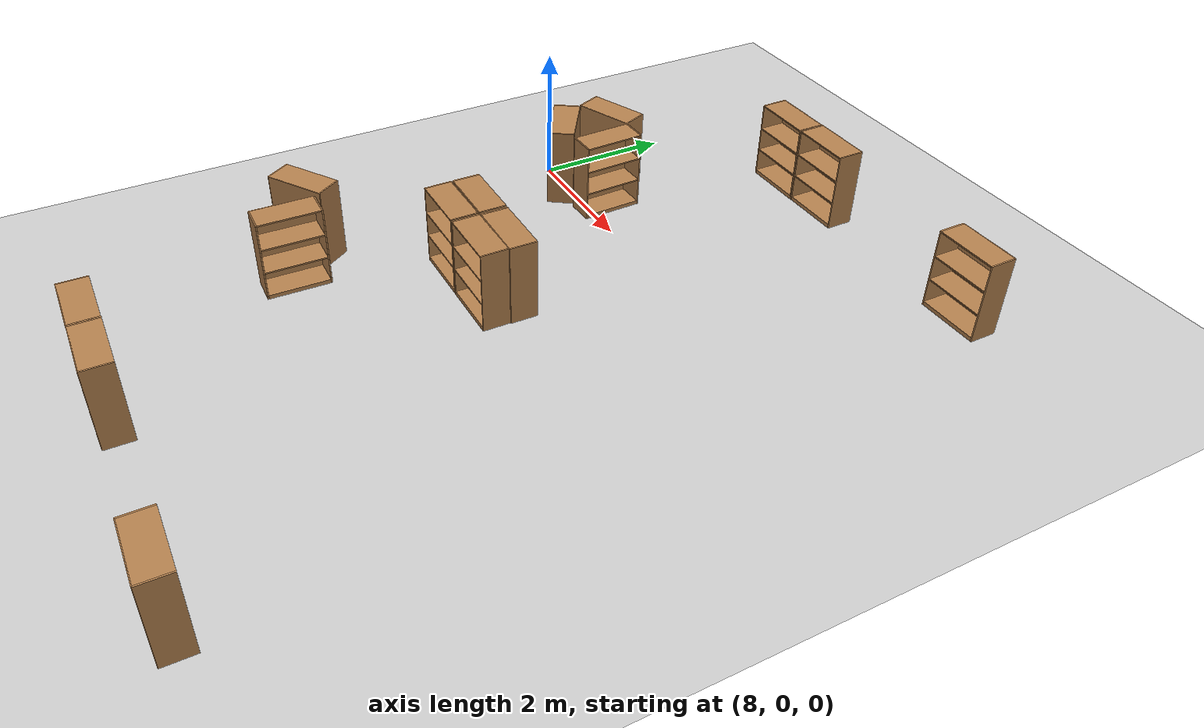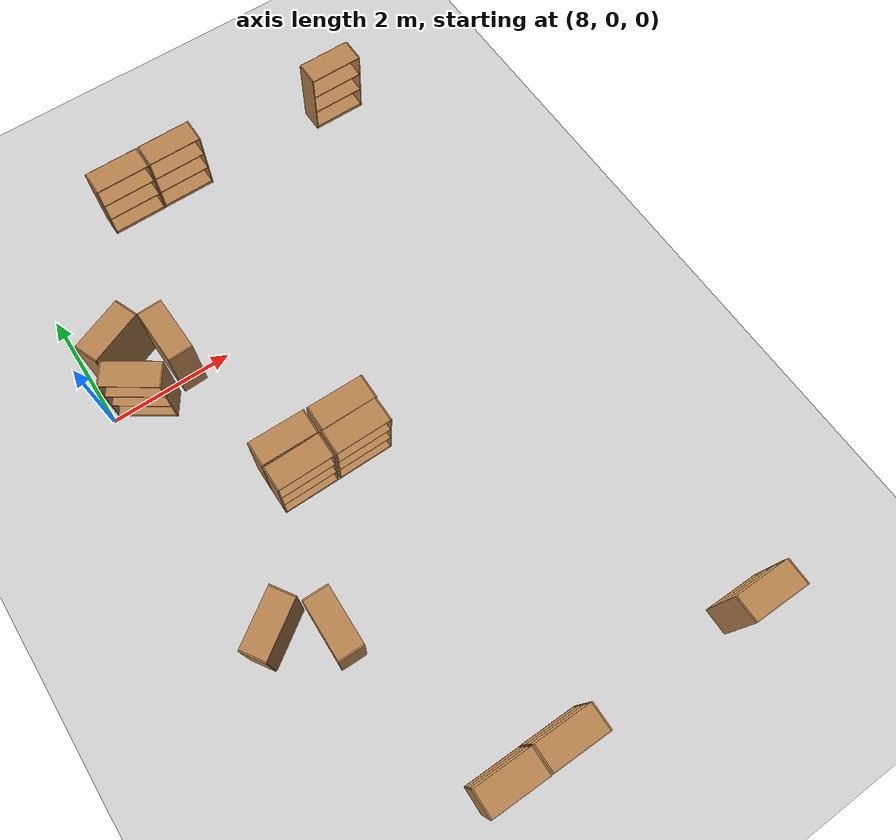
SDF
<sdf version="1.7">
 <world name="default">
  <model name="ground_plane">
   <static>1</static>
   <link name="link">
    <collision name="collision">
     <geometry><plane><normal>0 0 1</normal><size>100 100</size></plane></geometry>
     <surface><friction><ode><mu>100</mu><mu2>50</mu2></ode></friction></surface>
    </collision>
    <visual name="visual">
     <cast_shadows>0</cast_shadows>
     <geometry><plane><normal>0 0 1</normal><size>100 100</size></plane></geometry>
     <material>
      <script><uri>file://media/materials/scripts/gazebo.material</uri><name>Gazebo/Grey</name></script>
     </material>
    </visual>
   </link>
  </model>
  <model name="bookshelf_clone_clone_clone_0">
   <static>1</static>
   <link name="link">
    <inertial><mass>1</mass></inertial>
    <collision name="back">
     <pose>0 0.005 0.6 0 -0 0</pose>
     <geometry><box><size>0.9 0.01 1.2</size></box></geometry>
    </collision>
    <visual name="visual1">
     <pose>0 0.005 0.6 0 -0 0</pose>
     <geometry><box><size>0.9 0.01 1.2</size></box></geometry>
     <material>
      <script><uri>file://media/materials/scripts/gazebo.material</uri><name>Gazebo/Wood</name></script>
     </material>
    </visual>
    <collision name="left_side">
     <pose>0.45 -0.195 0.6 0 -0 0</pose>
     <geometry><box><size>0.02 0.4 1.2</size></box></geometry>
    </collision>
    <visual name="visual2">
     <pose>0.45 -0.195 0.6 0 -0 0</pose>
     <geometry><box><size>0.02 0.4 1.2</size></box></geometry>
     <material>
      <script><uri>file://media/materials/scripts/gazebo.material</uri><name>Gazebo/Wood</name></script>
     </material>
    </visual>
    <collision name="right_side">
     <pose>-0.45 -0.195 0.6 0 -0 0</pose>
     <geometry><box><size>0.02 0.4 1.2</size></box></geometry>
    </collision>
    <visual name="visual3">
     <pose>-0.45 -0.195 0.6 0 -0 0</pose>
     <geometry><box><size>0.02 0.4 1.2</size></box></geometry>
     <material>
      <script><uri>file://media/materials/scripts/gazebo.material</uri><name>Gazebo/Wood</name></script>
     </material>
    </visual>
    <collision name="bottom">
     <pose>0 -0.195 0.03 0 -0 0</pose>
     <geometry><box><size>0.88 0.4 0.06</size></box></geometry>
    </collision>
    <visual name="visual4">
     <pose>0 -0.195 0.03 0 -0 0</pose>
     <geometry><box><size>0.88 0.4 0.06</size></box></geometry>
     <material>
      <script><uri>file://media/materials/scripts/gazebo.material</uri><name>Gazebo/Wood</name></script>
     </material>
    </visual>
    <collision name="top">
     <pose>0 -0.195 1.19 0 -0 0</pose>
     <geometry><box><size>0.88 0.4 0.02</size></box></geometry>
    </collision>
    <visual name="visual5">
     <pose>0 -0.195 1.19 0 -0 0</pose>
     <geometry><box><size>0.88 0.4 0.02</size></box></geometry>
     <material>
      <script><uri>file://media/materials/scripts/gazebo.material</uri><name>Gazebo/Wood</name></script>
     </material>
    </visual>
    <collision name="low_shelf">
     <pose>0 -0.195 0.43 0 -0 0</pose>
     <geometry><box><size>0.88 0.4 0.02</size></box></geometry>
    </collision>
    <visual name="visual6">
     <pose>0 -0.195 0.43 0 -0 0</pose>
     <geometry><box><size>0.88 0.4 0.02</size></box></geometry>
     <material>
      <script><uri>file://media/materials/scripts/gazebo.material</uri><name>Gazebo/Wood</name></script>
     </material>
    </visual>
    <collision name="high_shelf">
     <pose>0 -0.195 0.8 0 -0 0</pose>
     <geometry><box><size>0.88 0.4 0.02</size></box></geometry>
    </collision>
    <visual name="visual7">
     <pose>0 -0.195 0.8 0 -0 0</pose>
     <geometry><box><size>0.88 0.4 0.02</size></box></geometry>
     <material>
      <script><uri>file://media/materials/scripts/gazebo.material</uri><name>Gazebo/Wood</name></script>
     </material>
    </visual>
   </link>
   <pose>9.92381 -7.54197 0.012624 0 -0 3.13078</pose>
  </model>
  <model name="bookshelf_clone_clone_clone_1">
   <static>1</static>
   <link name="link">
    <inertial><mass>1</mass></inertial>
    <collision name="back">
     <pose>0 0.005 0.6 0 -0 0</pose>
     <geometry><box><size>0.9 0.01 1.2</size></box></geometry>
    </collision>
    <visual name="visual1">
     <pose>0 0.005 0.6 0 -0 0</pose>
     <geometry><box><size>0.9 0.01 1.2</size></box></geometry>
     <material>
      <script><uri>file://media/materials/scripts/gazebo.material</uri><name>Gazebo/Wood</name></script>
     </material>
    </visual>
    <collision name="left_side">
     <pose>0.45 -0.195 0.6 0 -0 0</pose>
     <geometry><box><size>0.02 0.4 1.2</size></box></geometry>
    </collision>
    <visual name="visual2">
     <pose>0.45 -0.195 0.6 0 -0 0</pose>
     <geometry><box><size>0.02 0.4 1.2</size></box></geometry>
     <material>
      <script><uri>file://media/materials/scripts/gazebo.material</uri><name>Gazebo/Wood</name></script>
     </material>
    </visual>
    <collision name="right_side">
     <pose>-0.45 -0.195 0.6 0 -0 0</pose>
     <geometry><box><size>0.02 0.4 1.2</size></box></geometry>
    </collision>
    <visual name="visual3">
     <pose>-0.45 -0.195 0.6 0 -0 0</pose>
     <geometry><box><size>0.02 0.4 1.2</size></box></geometry>
     <material>
      <script><uri>file://media/materials/scripts/gazebo.material</uri><name>Gazebo/Wood</name></script>
     </material>
    </visual>
    <collision name="bottom">
     <pose>0 -0.195 0.03 0 -0 0</pose>
     <geometry><box><size>0.88 0.4 0.06</size></box></geometry>
    </collision>
    <visual name="visual4">
     <pose>0 -0.195 0.03 0 -0 0</pose>
     <geometry><box><size>0.88 0.4 0.06</size></box></geometry>
     <material>
      <script><uri>file://media/materials/scripts/gazebo.material</uri><name>Gazebo/Wood</name></script>
     </material>
    </visual>
    <collision name="top">
     <pose>0 -0.195 1.19 0 -0 0</pose>
     <geometry><box><size>0.88 0.4 0.02</size></box></geometry>
    </collision>
    <visual name="visual5">
     <pose>0 -0.195 1.19 0 -0 0</pose>
     <geometry><box><size>0.88 0.4 0.02</size></box></geometry>
     <material>
      <script><uri>file://media/materials/scripts/gazebo.material</uri><name>Gazebo/Wood</name></script>
     </material>
    </visual>
    <collision name="low_shelf">
     <pose>0 -0.195 0.43 0 -0 0</pose>
     <geometry><box><size>0.88 0.4 0.02</size></box></geometry>
    </collision>
    <visual name="visual6">
     <pose>0 -0.195 0.43 0 -0 0</pose>
     <geometry><box><size>0.88 0.4 0.02</size></box></geometry>
     <material>
      <script><uri>file://media/materials/scripts/gazebo.material</uri><name>Gazebo/Wood</name></script>
     </material>
    </visual>
    <collision name="high_shelf">
     <pose>0 -0.195 0.8 0 -0 0</pose>
     <geometry><box><size>0.88 0.4 0.02</size></box></geometry>
    </collision>
    <visual name="visual7">
     <pose>0 -0.195 0.8 0 -0 0</pose>
     <geometry><box><size>0.88 0.4 0.02</size></box></geometry>
     <material>
      <script><uri>file://media/materials/scripts/gazebo.material</uri><name>Gazebo/Wood</name></script>
     </material>
    </visual>
   </link>
   <pose>10.8453 -7.5483 0.012624 0 -0 3.13078</pose>
  </model>
  <model name="bookshelf_clone_clone_clone_2">
   <static>1</static>
   <link name="link">
    <inertial><mass>1</mass></inertial>
    <collision name="back">
     <pose>0 0.005 0.6 0 -0 0</pose>
     <geometry><box><size>0.9 0.01 1.2</size></box></geometry>
    </collision>
    <visual name="visual1">
     <pose>0 0.005 0.6 0 -0 0</pose>
     <geometry><box><size>0.9 0.01 1.2</size></box></geometry>
     <material>
      <script><uri>file://media/materials/scripts/gazebo.material</uri><name>Gazebo/Wood</name></script>
     </material>
    </visual>
    <collision name="left_side">
     <pose>0.45 -0.195 0.6 0 -0 0</pose>
     <geometry><box><size>0.02 0.4 1.2</size></box></geometry>
    </collision>
    <visual name="visual2">
     <pose>0.45 -0.195 0.6 0 -0 0</pose>
     <geometry><box><size>0.02 0.4 1.2</size></box></geometry>
     <material>
      <script><uri>file://media/materials/scripts/gazebo.material</uri><name>Gazebo/Wood</name></script>
     </material>
    </visual>
    <collision name="right_side">
     <pose>-0.45 -0.195 0.6 0 -0 0</pose>
     <geometry><box><size>0.02 0.4 1.2</size></box></geometry>
    </collision>
    <visual name="visual3">
     <pose>-0.45 -0.195 0.6 0 -0 0</pose>
     <geometry><box><size>0.02 0.4 1.2</size></box></geometry>
     <material>
      <script><uri>file://media/materials/scripts/gazebo.material</uri><name>Gazebo/Wood</name></script>
     </material>
    </visual>
    <collision name="bottom">
     <pose>0 -0.195 0.03 0 -0 0</pose>
     <geometry><box><size>0.88 0.4 0.06</size></box></geometry>
    </collision>
    <visual name="visual4">
     <pose>0 -0.195 0.03 0 -0 0</pose>
     <geometry><box><size>0.88 0.4 0.06</size></box></geometry>
     <material>
      <script><uri>file://media/materials/scripts/gazebo.material</uri><name>Gazebo/Wood</name></script>
     </material>
    </visual>
    <collision name="top">
     <pose>0 -0.195 1.19 0 -0 0</pose>
     <geometry><box><size>0.88 0.4 0.02</size></box></geometry>
    </collision>
    <visual name="visual5">
     <pose>0 -0.195 1.19 0 -0 0</pose>
     <geometry><box><size>0.88 0.4 0.02</size></box></geometry>
     <material>
      <script><uri>file://media/materials/scripts/gazebo.material</uri><name>Gazebo/Wood</name></script>
     </material>
    </visual>
    <collision name="low_shelf">
     <pose>0 -0.195 0.43 0 -0 0</pose>
     <geometry><box><size>0.88 0.4 0.02</size></box></geometry>
    </collision>
    <visual name="visual6">
     <pose>0 -0.195 0.43 0 -0 0</pose>
     <geometry><box><size>0.88 0.4 0.02</size></box></geometry>
     <material>
      <script><uri>file://media/materials/scripts/gazebo.material</uri><name>Gazebo/Wood</name></script>
     </material>
    </visual>
    <collision name="high_shelf">
     <pose>0 -0.195 0.8 0 -0 0</pose>
     <geometry><box><size>0.88 0.4 0.02</size></box></geometry>
    </collision>
    <visual name="visual7">
     <pose>0 -0.195 0.8 0 -0 0</pose>
     <geometry><box><size>0.88 0.4 0.02</size></box></geometry>
     <material>
      <script><uri>file://media/materials/scripts/gazebo.material</uri><name>Gazebo/Wood</name></script>
     </material>
    </visual>
   </link>
   <pose>14.1071 -7.58237 0.012624 0 -0 3.13078</pose>
  </model>
  <model name="bookshelf_clone_0">
   <static>1</static>
   <link name="link">
    <inertial><mass>1</mass></inertial>
    <collision name="back">
     <pose>0 0.005 0.6 0 -0 0</pose>
     <geometry><box><size>0.9 0.01 1.2</size></box></geometry>
    </collision>
    <visual name="visual1">
     <pose>0 0.005 0.6 0 -0 0</pose>
     <geometry><box><size>0.9 0.01 1.2</size></box></geometry>
     <material>
      <script><uri>file://media/materials/scripts/gazebo.material</uri><name>Gazebo/Wood</name></script>
     </material>
    </visual>
    <collision name="left_side">
     <pose>0.45 -0.195 0.6 0 -0 0</pose>
     <geometry><box><size>0.02 0.4 1.2</size></box></geometry>
    </collision>
    <visual name="visual2">
     <pose>0.45 -0.195 0.6 0 -0 0</pose>
     <geometry><box><size>0.02 0.4 1.2</size></box></geometry>
     <material>
      <script><uri>file://media/materials/scripts/gazebo.material</uri><name>Gazebo/Wood</name></script>
     </material>
    </visual>
    <collision name="right_side">
     <pose>-0.45 -0.195 0.6 0 -0 0</pose>
     <geometry><box><size>0.02 0.4 1.2</size></box></geometry>
    </collision>
    <visual name="visual3">
     <pose>-0.45 -0.195 0.6 0 -0 0</pose>
     <geometry><box><size>0.02 0.4 1.2</size></box></geometry>
     <material>
      <script><uri>file://media/materials/scripts/gazebo.material</uri><name>Gazebo/Wood</name></script>
     </material>
    </visual>
    <collision name="bottom">
     <pose>0 -0.195 0.03 0 -0 0</pose>
     <geometry><box><size>0.88 0.4 0.06</size></box></geometry>
    </collision>
    <visual name="visual4">
     <pose>0 -0.195 0.03 0 -0 0</pose>
     <geometry><box><size>0.88 0.4 0.06</size></box></geometry>
     <material>
      <script><uri>file://media/materials/scripts/gazebo.material</uri><name>Gazebo/Wood</name></script>
     </material>
    </visual>
    <collision name="top">
     <pose>0 -0.195 1.19 0 -0 0</pose>
     <geometry><box><size>0.88 0.4 0.02</size></box></geometry>
    </collision>
    <visual name="visual5">
     <pose>0 -0.195 1.19 0 -0 0</pose>
     <geometry><box><size>0.88 0.4 0.02</size></box></geometry>
     <material>
      <script><uri>file://media/materials/scripts/gazebo.material</uri><name>Gazebo/Wood</name></script>
     </material>
    </visual>
    <collision name="low_shelf">
     <pose>0 -0.195 0.43 0 -0 0</pose>
     <geometry><box><size>0.88 0.4 0.02</size></box></geometry>
    </collision>
    <visual name="visual6">
     <pose>0 -0.195 0.43 0 -0 0</pose>
     <geometry><box><size>0.88 0.4 0.02</size></box></geometry>
     <material>
      <script><uri>file://media/materials/scripts/gazebo.material</uri><name>Gazebo/Wood</name></script>
     </material>
    </visual>
    <collision name="high_shelf">
     <pose>0 -0.195 0.8 0 -0 0</pose>
     <geometry><box><size>0.88 0.4 0.02</size></box></geometry>
    </collision>
    <visual name="visual7">
     <pose>0 -0.195 0.8 0 -0 0</pose>
     <geometry><box><size>0.88 0.4 0.02</size></box></geometry>
     <material>
      <script><uri>file://media/materials/scripts/gazebo.material</uri><name>Gazebo/Wood</name></script>
     </material>
    </visual>
   </link>
   <pose>10.0302 3.32854 0.012624 0 -0 0</pose>
  </model>
  <model name="bookshelf_clone_0_clone">
   <static>1</static>
   <link name="link">
    <inertial><mass>1</mass></inertial>
    <collision name="back">
     <pose>0 0.005 0.6 0 -0 0</pose>
     <geometry><box><size>0.9 0.01 1.2</size></box></geometry>
    </collision>
    <visual name="visual1">
     <pose>0 0.005 0.6 0 -0 0</pose>
     <geometry><box><size>0.9 0.01 1.2</size></box></geometry>
     <material>
      <script><uri>file://media/materials/scripts/gazebo.material</uri><name>Gazebo/Wood</name></script>
     </material>
    </visual>
    <collision name="left_side">
     <pose>0.45 -0.195 0.6 0 -0 0</pose>
     <geometry><box><size>0.02 0.4 1.2</size></box></geometry>
    </collision>
    <visual name="visual2">
     <pose>0.45 -0.195 0.6 0 -0 0</pose>
     <geometry><box><size>0.02 0.4 1.2</size></box></geometry>
     <material>
      <script><uri>file://media/materials/scripts/gazebo.material</uri><name>Gazebo/Wood</name></script>
     </material>
    </visual>
    <collision name="right_side">
     <pose>-0.45 -0.195 0.6 0 -0 0</pose>
     <geometry><box><size>0.02 0.4 1.2</size></box></geometry>
    </collision>
    <visual name="visual3">
     <pose>-0.45 -0.195 0.6 0 -0 0</pose>
     <geometry><box><size>0.02 0.4 1.2</size></box></geometry>
     <material>
      <script><uri>file://media/materials/scripts/gazebo.material</uri><name>Gazebo/Wood</name></script>
     </material>
    </visual>
    <collision name="bottom">
     <pose>0 -0.195 0.03 0 -0 0</pose>
     <geometry><box><size>0.88 0.4 0.06</size></box></geometry>
    </collision>
    <visual name="visual4">
     <pose>0 -0.195 0.03 0 -0 0</pose>
     <geometry><box><size>0.88 0.4 0.06</size></box></geometry>
     <material>
      <script><uri>file://media/materials/scripts/gazebo.material</uri><name>Gazebo/Wood</name></script>
     </material>
    </visual>
    <collision name="top">
     <pose>0 -0.195 1.19 0 -0 0</pose>
     <geometry><box><size>0.88 0.4 0.02</size></box></geometry>
    </collision>
    <visual name="visual5">
     <pose>0 -0.195 1.19 0 -0 0</pose>
     <geometry><box><size>0.88 0.4 0.02</size></box></geometry>
     <material>
      <script><uri>file://media/materials/scripts/gazebo.material</uri><name>Gazebo/Wood</name></script>
     </material>
    </visual>
    <collision name="low_shelf">
     <pose>0 -0.195 0.43 0 -0 0</pose>
     <geometry><box><size>0.88 0.4 0.02</size></box></geometry>
    </collision>
    <visual name="visual6">
     <pose>0 -0.195 0.43 0 -0 0</pose>
     <geometry><box><size>0.88 0.4 0.02</size></box></geometry>
     <material>
      <script><uri>file://media/materials/scripts/gazebo.material</uri><name>Gazebo/Wood</name></script>
     </material>
    </visual>
    <collision name="high_shelf">
     <pose>0 -0.195 0.8 0 -0 0</pose>
     <geometry><box><size>0.88 0.4 0.02</size></box></geometry>
    </collision>
    <visual name="visual7">
     <pose>0 -0.195 0.8 0 -0 0</pose>
     <geometry><box><size>0.88 0.4 0.02</size></box></geometry>
     <material>
      <script><uri>file://media/materials/scripts/gazebo.material</uri><name>Gazebo/Wood</name></script>
     </material>
    </visual>
   </link>
   <pose>10.9525 3.33337 0.012624 0 -0 0</pose>
  </model>
  <model name="bookshelf_clone_0_clone_0">
   <static>1</static>
   <link name="link">
    <inertial><mass>1</mass></inertial>
    <collision name="back">
     <pose>0 0.005 0.6 0 -0 0</pose>
     <geometry><box><size>0.9 0.01 1.2</size></box></geometry>
    </collision>
    <visual name="visual1">
     <pose>0 0.005 0.6 0 -0 0</pose>
     <geometry><box><size>0.9 0.01 1.2</size></box></geometry>
     <material>
      <script><uri>file://media/materials/scripts/gazebo.material</uri><name>Gazebo/Wood</name></script>
     </material>
    </visual>
    <collision name="left_side">
     <pose>0.45 -0.195 0.6 0 -0 0</pose>
     <geometry><box><size>0.02 0.4 1.2</size></box></geometry>
    </collision>
    <visual name="visual2">
     <pose>0.45 -0.195 0.6 0 -0 0</pose>
     <geometry><box><size>0.02 0.4 1.2</size></box></geometry>
     <material>
      <script><uri>file://media/materials/scripts/gazebo.material</uri><name>Gazebo/Wood</name></script>
     </material>
    </visual>
    <collision name="right_side">
     <pose>-0.45 -0.195 0.6 0 -0 0</pose>
     <geometry><box><size>0.02 0.4 1.2</size></box></geometry>
    </collision>
    <visual name="visual3">
     <pose>-0.45 -0.195 0.6 0 -0 0</pose>
     <geometry><box><size>0.02 0.4 1.2</size></box></geometry>
     <material>
      <script><uri>file://media/materials/scripts/gazebo.material</uri><name>Gazebo/Wood</name></script>
     </material>
    </visual>
    <collision name="bottom">
     <pose>0 -0.195 0.03 0 -0 0</pose>
     <geometry><box><size>0.88 0.4 0.06</size></box></geometry>
    </collision>
    <visual name="visual4">
     <pose>0 -0.195 0.03 0 -0 0</pose>
     <geometry><box><size>0.88 0.4 0.06</size></box></geometry>
     <material>
      <script><uri>file://media/materials/scripts/gazebo.material</uri><name>Gazebo/Wood</name></script>
     </material>
    </visual>
    <collision name="top">
     <pose>0 -0.195 1.19 0 -0 0</pose>
     <geometry><box><size>0.88 0.4 0.02</size></box></geometry>
    </collision>
    <visual name="visual5">
     <pose>0 -0.195 1.19 0 -0 0</pose>
     <geometry><box><size>0.88 0.4 0.02</size></box></geometry>
     <material>
      <script><uri>file://media/materials/scripts/gazebo.material</uri><name>Gazebo/Wood</name></script>
     </material>
    </visual>
    <collision name="low_shelf">
     <pose>0 -0.195 0.43 0 -0 0</pose>
     <geometry><box><size>0.88 0.4 0.02</size></box></geometry>
    </collision>
    <visual name="visual6">
     <pose>0 -0.195 0.43 0 -0 0</pose>
     <geometry><box><size>0.88 0.4 0.02</size></box></geometry>
     <material>
      <script><uri>file://media/materials/scripts/gazebo.material</uri><name>Gazebo/Wood</name></script>
     </material>
    </visual>
    <collision name="high_shelf">
     <pose>0 -0.195 0.8 0 -0 0</pose>
     <geometry><box><size>0.88 0.4 0.02</size></box></geometry>
    </collision>
    <visual name="visual7">
     <pose>0 -0.195 0.8 0 -0 0</pose>
     <geometry><box><size>0.88 0.4 0.02</size></box></geometry>
     <material>
      <script><uri>file://media/materials/scripts/gazebo.material</uri><name>Gazebo/Wood</name></script>
     </material>
    </visual>
   </link>
   <pose>13.9438 3.28168 0.012624 0 -0 0</pose>
  </model>
  <model name="bookshelf_clone_0_clone_1">
   <static>1</static>
   <link name="link">
    <inertial><mass>1</mass></inertial>
    <collision name="back">
     <pose>0 0.005 0.6 0 -0 0</pose>
     <geometry><box><size>0.9 0.01 1.2</size></box></geometry>
    </collision>
    <visual name="visual1">
     <pose>0 0.005 0.6 0 -0 0</pose>
     <geometry><box><size>0.9 0.01 1.2</size></box></geometry>
     <material>
      <script><uri>file://media/materials/scripts/gazebo.material</uri><name>Gazebo/Wood</name></script>
     </material>
    </visual>
    <collision name="left_side">
     <pose>0.45 -0.195 0.6 0 -0 0</pose>
     <geometry><box><size>0.02 0.4 1.2</size></box></geometry>
    </collision>
    <visual name="visual2">
     <pose>0.45 -0.195 0.6 0 -0 0</pose>
     <geometry><box><size>0.02 0.4 1.2</size></box></geometry>
     <material>
      <script><uri>file://media/materials/scripts/gazebo.material</uri><name>Gazebo/Wood</name></script>
     </material>
    </visual>
    <collision name="right_side">
     <pose>-0.45 -0.195 0.6 0 -0 0</pose>
     <geometry><box><size>0.02 0.4 1.2</size></box></geometry>
    </collision>
    <visual name="visual3">
     <pose>-0.45 -0.195 0.6 0 -0 0</pose>
     <geometry><box><size>0.02 0.4 1.2</size></box></geometry>
     <material>
      <script><uri>file://media/materials/scripts/gazebo.material</uri><name>Gazebo/Wood</name></script>
     </material>
    </visual>
    <collision name="bottom">
     <pose>0 -0.195 0.03 0 -0 0</pose>
     <geometry><box><size>0.88 0.4 0.06</size></box></geometry>
    </collision>
    <visual name="visual4">
     <pose>0 -0.195 0.03 0 -0 0</pose>
     <geometry><box><size>0.88 0.4 0.06</size></box></geometry>
     <material>
      <script><uri>file://media/materials/scripts/gazebo.material</uri><name>Gazebo/Wood</name></script>
     </material>
    </visual>
    <collision name="top">
     <pose>0 -0.195 1.19 0 -0 0</pose>
     <geometry><box><size>0.88 0.4 0.02</size></box></geometry>
    </collision>
    <visual name="visual5">
     <pose>0 -0.195 1.19 0 -0 0</pose>
     <geometry><box><size>0.88 0.4 0.02</size></box></geometry>
     <material>
      <script><uri>file://media/materials/scripts/gazebo.material</uri><name>Gazebo/Wood</name></script>
     </material>
    </visual>
    <collision name="low_shelf">
     <pose>0 -0.195 0.43 0 -0 0</pose>
     <geometry><box><size>0.88 0.4 0.02</size></box></geometry>
    </collision>
    <visual name="visual6">
     <pose>0 -0.195 0.43 0 -0 0</pose>
     <geometry><box><size>0.88 0.4 0.02</size></box></geometry>
     <material>
      <script><uri>file://media/materials/scripts/gazebo.material</uri><name>Gazebo/Wood</name></script>
     </material>
    </visual>
    <collision name="high_shelf">
     <pose>0 -0.195 0.8 0 -0 0</pose>
     <geometry><box><size>0.88 0.4 0.02</size></box></geometry>
    </collision>
    <visual name="visual7">
     <pose>0 -0.195 0.8 0 -0 0</pose>
     <geometry><box><size>0.88 0.4 0.02</size></box></geometry>
     <material>
      <script><uri>file://media/materials/scripts/gazebo.material</uri><name>Gazebo/Wood</name></script>
     </material>
    </visual>
   </link>
   <pose>9.90189 -2.29292 0.012624 0 -0 0</pose>
  </model>
  <model name="bookshelf_clone_0_clone_2">
   <static>1</static>
   <link name="link">
    <inertial><mass>1</mass></inertial>
    <collision name="back">
     <pose>0 0.005 0.6 0 -0 0</pose>
     <geometry><box><size>0.9 0.01 1.2</size></box></geometry>
    </collision>
    <visual name="visual1">
     <pose>0 0.005 0.6 0 -0 0</pose>
     <geometry><box><size>0.9 0.01 1.2</size></box></geometry>
     <material>
      <script><uri>file://media/materials/scripts/gazebo.material</uri><name>Gazebo/Wood</name></script>
     </material>
    </visual>
    <collision name="left_side">
     <pose>0.45 -0.195 0.6 0 -0 0</pose>
     <geometry><box><size>0.02 0.4 1.2</size></box></geometry>
    </collision>
    <visual name="visual2">
     <pose>0.45 -0.195 0.6 0 -0 0</pose>
     <geometry><box><size>0.02 0.4 1.2</size></box></geometry>
     <material>
      <script><uri>file://media/materials/scripts/gazebo.material</uri><name>Gazebo/Wood</name></script>
     </material>
    </visual>
    <collision name="right_side">
     <pose>-0.45 -0.195 0.6 0 -0 0</pose>
     <geometry><box><size>0.02 0.4 1.2</size></box></geometry>
    </collision>
    <visual name="visual3">
     <pose>-0.45 -0.195 0.6 0 -0 0</pose>
     <geometry><box><size>0.02 0.4 1.2</size></box></geometry>
     <material>
      <script><uri>file://media/materials/scripts/gazebo.material</uri><name>Gazebo/Wood</name></script>
     </material>
    </visual>
    <collision name="bottom">
     <pose>0 -0.195 0.03 0 -0 0</pose>
     <geometry><box><size>0.88 0.4 0.06</size></box></geometry>
    </collision>
    <visual name="visual4">
     <pose>0 -0.195 0.03 0 -0 0</pose>
     <geometry><box><size>0.88 0.4 0.06</size></box></geometry>
     <material>
      <script><uri>file://media/materials/scripts/gazebo.material</uri><name>Gazebo/Wood</name></script>
     </material>
    </visual>
    <collision name="top">
     <pose>0 -0.195 1.19 0 -0 0</pose>
     <geometry><box><size>0.88 0.4 0.02</size></box></geometry>
    </collision>
    <visual name="visual5">
     <pose>0 -0.195 1.19 0 -0 0</pose>
     <geometry><box><size>0.88 0.4 0.02</size></box></geometry>
     <material>
      <script><uri>file://media/materials/scripts/gazebo.material</uri><name>Gazebo/Wood</name></script>
     </material>
    </visual>
    <collision name="low_shelf">
     <pose>0 -0.195 0.43 0 -0 0</pose>
     <geometry><box><size>0.88 0.4 0.02</size></box></geometry>
    </collision>
    <visual name="visual6">
     <pose>0 -0.195 0.43 0 -0 0</pose>
     <geometry><box><size>0.88 0.4 0.02</size></box></geometry>
     <material>
      <script><uri>file://media/materials/scripts/gazebo.material</uri><name>Gazebo/Wood</name></script>
     </material>
    </visual>
    <collision name="high_shelf">
     <pose>0 -0.195 0.8 0 -0 0</pose>
     <geometry><box><size>0.88 0.4 0.02</size></box></geometry>
    </collision>
    <visual name="visual7">
     <pose>0 -0.195 0.8 0 -0 0</pose>
     <geometry><box><size>0.88 0.4 0.02</size></box></geometry>
     <material>
      <script><uri>file://media/materials/scripts/gazebo.material</uri><name>Gazebo/Wood</name></script>
     </material>
    </visual>
   </link>
   <pose>10.845 -2.29386 0.012624 0 -0 0</pose>
  </model>
  <model name="bookshelf_clone_clone_clone_1_clone">
   <static>1</static>
   <link name="link">
    <inertial><mass>1</mass></inertial>
    <collision name="back">
     <pose>0 0.005 0.6 0 -0 0</pose>
     <geometry><box><size>0.9 0.01 1.2</size></box></geometry>
    </collision>
    <visual name="visual1">
     <pose>0 0.005 0.6 0 -0 0</pose>
     <geometry><box><size>0.9 0.01 1.2</size></box></geometry>
     <material>
      <script><uri>file://media/materials/scripts/gazebo.material</uri><name>Gazebo/Wood</name></script>
     </material>
    </visual>
    <collision name="left_side">
     <pose>0.45 -0.195 0.6 0 -0 0</pose>
     <geometry><box><size>0.02 0.4 1.2</size></box></geometry>
    </collision>
    <visual name="visual2">
     <pose>0.45 -0.195 0.6 0 -0 0</pose>
     <geometry><box><size>0.02 0.4 1.2</size></box></geometry>
     <material>
      <script><uri>file://media/materials/scripts/gazebo.material</uri><name>Gazebo/Wood</name></script>
     </material>
    </visual>
    <collision name="right_side">
     <pose>-0.45 -0.195 0.6 0 -0 0</pose>
     <geometry><box><size>0.02 0.4 1.2</size></box></geometry>
    </collision>
    <visual name="visual3">
     <pose>-0.45 -0.195 0.6 0 -0 0</pose>
     <geometry><box><size>0.02 0.4 1.2</size></box></geometry>
     <material>
      <script><uri>file://media/materials/scripts/gazebo.material</uri><name>Gazebo/Wood</name></script>
     </material>
    </visual>
    <collision name="bottom">
     <pose>0 -0.195 0.03 0 -0 0</pose>
     <geometry><box><size>0.88 0.4 0.06</size></box></geometry>
    </collision>
    <visual name="visual4">
     <pose>0 -0.195 0.03 0 -0 0</pose>
     <geometry><box><size>0.88 0.4 0.06</size></box></geometry>
     <material>
      <script><uri>file://media/materials/scripts/gazebo.material</uri><name>Gazebo/Wood</name></script>
     </material>
    </visual>
    <collision name="top">
     <pose>0 -0.195 1.19 0 -0 0</pose>
     <geometry><box><size>0.88 0.4 0.02</size></box></geometry>
    </collision>
    <visual name="visual5">
     <pose>0 -0.195 1.19 0 -0 0</pose>
     <geometry><box><size>0.88 0.4 0.02</size></box></geometry>
     <material>
      <script><uri>file://media/materials/scripts/gazebo.material</uri><name>Gazebo/Wood</name></script>
     </material>
    </visual>
    <collision name="low_shelf">
     <pose>0 -0.195 0.43 0 -0 0</pose>
     <geometry><box><size>0.88 0.4 0.02</size></box></geometry>
    </collision>
    <visual name="visual6">
     <pose>0 -0.195 0.43 0 -0 0</pose>
     <geometry><box><size>0.88 0.4 0.02</size></box></geometry>
     <material>
      <script><uri>file://media/materials/scripts/gazebo.material</uri><name>Gazebo/Wood</name></script>
     </material>
    </visual>
    <collision name="high_shelf">
     <pose>0 -0.195 0.8 0 -0 0</pose>
     <geometry><box><size>0.88 0.4 0.02</size></box></geometry>
    </collision>
    <visual name="visual7">
     <pose>0 -0.195 0.8 0 -0 0</pose>
     <geometry><box><size>0.88 0.4 0.02</size></box></geometry>
     <material>
      <script><uri>file://media/materials/scripts/gazebo.material</uri><name>Gazebo/Wood</name></script>
     </material>
    </visual>
   </link>
   <pose>10.8611 -2.27659 0.012624 0 -0 3.13078</pose>
  </model>
  <model name="bookshelf_clone_clone_clone_1_clone_0">
   <static>1</static>
   <link name="link">
    <inertial><mass>1</mass></inertial>
    <collision name="back">
     <pose>0 0.005 0.6 0 -0 0</pose>
     <geometry><box><size>0.9 0.01 1.2</size></box></geometry>
    </collision>
    <visual name="visual1">
     <pose>0 0.005 0.6 0 -0 0</pose>
     <geometry><box><size>0.9 0.01 1.2</size></box></geometry>
     <material>
      <script><uri>file://media/materials/scripts/gazebo.material</uri><name>Gazebo/Wood</name></script>
     </material>
    </visual>
    <collision name="left_side">
     <pose>0.45 -0.195 0.6 0 -0 0</pose>
     <geometry><box><size>0.02 0.4 1.2</size></box></geometry>
    </collision>
    <visual name="visual2">
     <pose>0.45 -0.195 0.6 0 -0 0</pose>
     <geometry><box><size>0.02 0.4 1.2</size></box></geometry>
     <material>
      <script><uri>file://media/materials/scripts/gazebo.material</uri><name>Gazebo/Wood</name></script>
     </material>
    </visual>
    <collision name="right_side">
     <pose>-0.45 -0.195 0.6 0 -0 0</pose>
     <geometry><box><size>0.02 0.4 1.2</size></box></geometry>
    </collision>
    <visual name="visual3">
     <pose>-0.45 -0.195 0.6 0 -0 0</pose>
     <geometry><box><size>0.02 0.4 1.2</size></box></geometry>
     <material>
      <script><uri>file://media/materials/scripts/gazebo.material</uri><name>Gazebo/Wood</name></script>
     </material>
    </visual>
    <collision name="bottom">
     <pose>0 -0.195 0.03 0 -0 0</pose>
     <geometry><box><size>0.88 0.4 0.06</size></box></geometry>
    </collision>
    <visual name="visual4">
     <pose>0 -0.195 0.03 0 -0 0</pose>
     <geometry><box><size>0.88 0.4 0.06</size></box></geometry>
     <material>
      <script><uri>file://media/materials/scripts/gazebo.material</uri><name>Gazebo/Wood</name></script>
     </material>
    </visual>
    <collision name="top">
     <pose>0 -0.195 1.19 0 -0 0</pose>
     <geometry><box><size>0.88 0.4 0.02</size></box></geometry>
    </collision>
    <visual name="visual5">
     <pose>0 -0.195 1.19 0 -0 0</pose>
     <geometry><box><size>0.88 0.4 0.02</size></box></geometry>
     <material>
      <script><uri>file://media/materials/scripts/gazebo.material</uri><name>Gazebo/Wood</name></script>
     </material>
    </visual>
    <collision name="low_shelf">
     <pose>0 -0.195 0.43 0 -0 0</pose>
     <geometry><box><size>0.88 0.4 0.02</size></box></geometry>
    </collision>
    <visual name="visual6">
     <pose>0 -0.195 0.43 0 -0 0</pose>
     <geometry><box><size>0.88 0.4 0.02</size></box></geometry>
     <material>
      <script><uri>file://media/materials/scripts/gazebo.material</uri><name>Gazebo/Wood</name></script>
     </material>
    </visual>
    <collision name="high_shelf">
     <pose>0 -0.195 0.8 0 -0 0</pose>
     <geometry><box><size>0.88 0.4 0.02</size></box></geometry>
    </collision>
    <visual name="visual7">
     <pose>0 -0.195 0.8 0 -0 0</pose>
     <geometry><box><size>0.88 0.4 0.02</size></box></geometry>
     <material>
      <script><uri>file://media/materials/scripts/gazebo.material</uri><name>Gazebo/Wood</name></script>
     </material>
    </visual>
   </link>
   <pose>9.90031 -2.26284 0.012624 0 -0 3.13078</pose>
  </model>
  <model name="bookshelf_clone_clone_clone_1_clone_0_clone_2_clone_clone">
   <static>1</static>
   <link name="link">
    <inertial><mass>1</mass></inertial>
    <collision name="back">
     <pose>0 0.005 0.6 0 -0 0</pose>
     <geometry><box><size>0.9 0.01 1.2</size></box></geometry>
    </collision>
    <visual name="visual1">
     <pose>0 0.005 0.6 0 -0 0</pose>
     <geometry><box><size>0.9 0.01 1.2</size></box></geometry>
     <material>
      <script><uri>file://media/materials/scripts/gazebo.material</uri><name>Gazebo/Wood</name></script>
     </material>
    </visual>
    <collision name="left_side">
     <pose>0.45 -0.195 0.6 0 -0 0</pose>
     <geometry><box><size>0.02 0.4 1.2</size></box></geometry>
    </collision>
    <visual name="visual2">
     <pose>0.45 -0.195 0.6 0 -0 0</pose>
     <geometry><box><size>0.02 0.4 1.2</size></box></geometry>
     <material>
      <script><uri>file://media/materials/scripts/gazebo.material</uri><name>Gazebo/Wood</name></script>
     </material>
    </visual>
    <collision name="right_side">
     <pose>-0.45 -0.195 0.6 0 -0 0</pose>
     <geometry><box><size>0.02 0.4 1.2</size></box></geometry>
    </collision>
    <visual name="visual3">
     <pose>-0.45 -0.195 0.6 0 -0 0</pose>
     <geometry><box><size>0.02 0.4 1.2</size></box></geometry>
     <material>
      <script><uri>file://media/materials/scripts/gazebo.material</uri><name>Gazebo/Wood</name></script>
     </material>
    </visual>
    <collision name="bottom">
     <pose>0 -0.195 0.03 0 -0 0</pose>
     <geometry><box><size>0.88 0.4 0.06</size></box></geometry>
    </collision>
    <visual name="visual4">
     <pose>0 -0.195 0.03 0 -0 0</pose>
     <geometry><box><size>0.88 0.4 0.06</size></box></geometry>
     <material>
      <script><uri>file://media/materials/scripts/gazebo.material</uri><name>Gazebo/Wood</name></script>
     </material>
    </visual>
    <collision name="top">
     <pose>0 -0.195 1.19 0 -0 0</pose>
     <geometry><box><size>0.88 0.4 0.02</size></box></geometry>
    </collision>
    <visual name="visual5">
     <pose>0 -0.195 1.19 0 -0 0</pose>
     <geometry><box><size>0.88 0.4 0.02</size></box></geometry>
     <material>
      <script><uri>file://media/materials/scripts/gazebo.material</uri><name>Gazebo/Wood</name></script>
     </material>
    </visual>
    <collision name="low_shelf">
     <pose>0 -0.195 0.43 0 -0 0</pose>
     <geometry><box><size>0.88 0.4 0.02</size></box></geometry>
    </collision>
    <visual name="visual6">
     <pose>0 -0.195 0.43 0 -0 0</pose>
     <geometry><box><size>0.88 0.4 0.02</size></box></geometry>
     <material>
      <script><uri>file://media/materials/scripts/gazebo.material</uri><name>Gazebo/Wood</name></script>
     </material>
    </visual>
    <collision name="high_shelf">
     <pose>0 -0.195 0.8 0 -0 0</pose>
     <geometry><box><size>0.88 0.4 0.02</size></box></geometry>
    </collision>
    <visual name="visual7">
     <pose>0 -0.195 0.8 0 -0 0</pose>
     <geometry><box><size>0.88 0.4 0.02</size></box></geometry>
     <material>
      <script><uri>file://media/materials/scripts/gazebo.material</uri><name>Gazebo/Wood</name></script>
     </material>
    </visual>
   </link>
   <pose>9.13447 0.285063 0.012624 0 -0 1.60042</pose>
  </model>
  <model name="bookshelf_clone_clone_clone_1_clone_0_clone_1_clone_clone">
   <static>1</static>
   <link name="link">
    <inertial><mass>1</mass></inertial>
    <collision name="back">
     <pose>0 0.005 0.6 0 -0 0</pose>
     <geometry><box><size>0.9 0.01 1.2</size></box></geometry>
    </collision>
    <visual name="visual1">
     <pose>0 0.005 0.6 0 -0 0</pose>
     <geometry><box><size>0.9 0.01 1.2</size></box></geometry>
     <material>
      <script><uri>file://media/materials/scripts/gazebo.material</uri><name>Gazebo/Wood</name></script>
     </material>
    </visual>
    <collision name="left_side">
     <pose>0.45 -0.195 0.6 0 -0 0</pose>
     <geometry><box><size>0.02 0.4 1.2</size></box></geometry>
    </collision>
    <visual name="visual2">
     <pose>0.45 -0.195 0.6 0 -0 0</pose>
     <geometry><box><size>0.02 0.4 1.2</size></box></geometry>
     <material>
      <script><uri>file://media/materials/scripts/gazebo.material</uri><name>Gazebo/Wood</name></script>
     </material>
    </visual>
    <collision name="right_side">
     <pose>-0.45 -0.195 0.6 0 -0 0</pose>
     <geometry><box><size>0.02 0.4 1.2</size></box></geometry>
    </collision>
    <visual name="visual3">
     <pose>-0.45 -0.195 0.6 0 -0 0</pose>
     <geometry><box><size>0.02 0.4 1.2</size></box></geometry>
     <material>
      <script><uri>file://media/materials/scripts/gazebo.material</uri><name>Gazebo/Wood</name></script>
     </material>
    </visual>
    <collision name="bottom">
     <pose>0 -0.195 0.03 0 -0 0</pose>
     <geometry><box><size>0.88 0.4 0.06</size></box></geometry>
    </collision>
    <visual name="visual4">
     <pose>0 -0.195 0.03 0 -0 0</pose>
     <geometry><box><size>0.88 0.4 0.06</size></box></geometry>
     <material>
      <script><uri>file://media/materials/scripts/gazebo.material</uri><name>Gazebo/Wood</name></script>
     </material>
    </visual>
    <collision name="top">
     <pose>0 -0.195 1.19 0 -0 0</pose>
     <geometry><box><size>0.88 0.4 0.02</size></box></geometry>
    </collision>
    <visual name="visual5">
     <pose>0 -0.195 1.19 0 -0 0</pose>
     <geometry><box><size>0.88 0.4 0.02</size></box></geometry>
     <material>
      <script><uri>file://media/materials/scripts/gazebo.material</uri><name>Gazebo/Wood</name></script>
     </material>
    </visual>
    <collision name="low_shelf">
     <pose>0 -0.195 0.43 0 -0 0</pose>
     <geometry><box><size>0.88 0.4 0.02</size></box></geometry>
    </collision>
    <visual name="visual6">
     <pose>0 -0.195 0.43 0 -0 0</pose>
     <geometry><box><size>0.88 0.4 0.02</size></box></geometry>
     <material>
      <script><uri>file://media/materials/scripts/gazebo.material</uri><name>Gazebo/Wood</name></script>
     </material>
    </visual>
    <collision name="high_shelf">
     <pose>0 -0.195 0.8 0 -0 0</pose>
     <geometry><box><size>0.88 0.4 0.02</size></box></geometry>
    </collision>
    <visual name="visual7">
     <pose>0 -0.195 0.8 0 -0 0</pose>
     <geometry><box><size>0.88 0.4 0.02</size></box></geometry>
     <material>
      <script><uri>file://media/materials/scripts/gazebo.material</uri><name>Gazebo/Wood</name></script>
     </material>
    </visual>
   </link>
   <pose>8.69753 0.106642 0.029212 0 0 -0.598378</pose>
  </model>
  <model name="bookshelf_clone_clone_clone_1_clone_0_clone_3_clone_clone">
   <static>1</static>
   <link name="link">
    <inertial><mass>1</mass></inertial>
    <collision name="back">
     <pose>0 0.005 0.6 0 -0 0</pose>
     <geometry><box><size>0.9 0.01 1.2</size></box></geometry>
    </collision>
    <visual name="visual1">
     <pose>0 0.005 0.6 0 -0 0</pose>
     <geometry><box><size>0.9 0.01 1.2</size></box></geometry>
     <material>
      <script><uri>file://media/materials/scripts/gazebo.material</uri><name>Gazebo/Wood</name></script>
     </material>
    </visual>
    <collision name="left_side">
     <pose>0.45 -0.195 0.6 0 -0 0</pose>
     <geometry><box><size>0.02 0.4 1.2</size></box></geometry>
    </collision>
    <visual name="visual2">
     <pose>0.45 -0.195 0.6 0 -0 0</pose>
     <geometry><box><size>0.02 0.4 1.2</size></box></geometry>
     <material>
      <script><uri>file://media/materials/scripts/gazebo.material</uri><name>Gazebo/Wood</name></script>
     </material>
    </visual>
    <collision name="right_side">
     <pose>-0.45 -0.195 0.6 0 -0 0</pose>
     <geometry><box><size>0.02 0.4 1.2</size></box></geometry>
    </collision>
    <visual name="visual3">
     <pose>-0.45 -0.195 0.6 0 -0 0</pose>
     <geometry><box><size>0.02 0.4 1.2</size></box></geometry>
     <material>
      <script><uri>file://media/materials/scripts/gazebo.material</uri><name>Gazebo/Wood</name></script>
     </material>
    </visual>
    <collision name="bottom">
     <pose>0 -0.195 0.03 0 -0 0</pose>
     <geometry><box><size>0.88 0.4 0.06</size></box></geometry>
    </collision>
    <visual name="visual4">
     <pose>0 -0.195 0.03 0 -0 0</pose>
     <geometry><box><size>0.88 0.4 0.06</size></box></geometry>
     <material>
      <script><uri>file://media/materials/scripts/gazebo.material</uri><name>Gazebo/Wood</name></script>
     </material>
    </visual>
    <collision name="top">
     <pose>0 -0.195 1.19 0 -0 0</pose>
     <geometry><box><size>0.88 0.4 0.02</size></box></geometry>
    </collision>
    <visual name="visual5">
     <pose>0 -0.195 1.19 0 -0 0</pose>
     <geometry><box><size>0.88 0.4 0.02</size></box></geometry>
     <material>
      <script><uri>file://media/materials/scripts/gazebo.material</uri><name>Gazebo/Wood</name></script>
     </material>
    </visual>
    <collision name="low_shelf">
     <pose>0 -0.195 0.43 0 -0 0</pose>
     <geometry><box><size>0.88 0.4 0.02</size></box></geometry>
    </collision>
    <visual name="visual6">
     <pose>0 -0.195 0.43 0 -0 0</pose>
     <geometry><box><size>0.88 0.4 0.02</size></box></geometry>
     <material>
      <script><uri>file://media/materials/scripts/gazebo.material</uri><name>Gazebo/Wood</name></script>
     </material>
    </visual>
    <collision name="high_shelf">
     <pose>0 -0.195 0.8 0 -0 0</pose>
     <geometry><box><size>0.88 0.4 0.02</size></box></geometry>
    </collision>
    <visual name="visual7">
     <pose>0 -0.195 0.8 0 -0 0</pose>
     <geometry><box><size>0.88 0.4 0.02</size></box></geometry>
     <material>
      <script><uri>file://media/materials/scripts/gazebo.material</uri><name>Gazebo/Wood</name></script>
     </material>
    </visual>
   </link>
   <pose>8.68842 0.576564 0.012624 0 0 -2.75538</pose>
  </model>
  <model name="bookshelf_clone_clone_clone_1_clone_0_clone_2_clone_clone_clone">
   <static>1</static>
   <link name="link">
    <inertial><mass>1</mass></inertial>
    <collision name="back">
     <pose>0 0.005 0.6 0 -0 0</pose>
     <geometry><box><size>0.9 0.01 1.2</size></box></geometry>
    </collision>
    <visual name="visual1">
     <pose>0 0.005 0.6 0 -0 0</pose>
     <geometry><box><size>0.9 0.01 1.2</size></box></geometry>
     <material>
      <script><uri>file://media/materials/scripts/gazebo.material</uri><name>Gazebo/Wood</name></script>
     </material>
    </visual>
    <collision name="left_side">
     <pose>0.45 -0.195 0.6 0 -0 0</pose>
     <geometry><box><size>0.02 0.4 1.2</size></box></geometry>
    </collision>
    <visual name="visual2">
     <pose>0.45 -0.195 0.6 0 -0 0</pose>
     <geometry><box><size>0.02 0.4 1.2</size></box></geometry>
     <material>
      <script><uri>file://media/materials/scripts/gazebo.material</uri><name>Gazebo/Wood</name></script>
     </material>
    </visual>
    <collision name="right_side">
     <pose>-0.45 -0.195 0.6 0 -0 0</pose>
     <geometry><box><size>0.02 0.4 1.2</size></box></geometry>
    </collision>
    <visual name="visual3">
     <pose>-0.45 -0.195 0.6 0 -0 0</pose>
     <geometry><box><size>0.02 0.4 1.2</size></box></geometry>
     <material>
      <script><uri>file://media/materials/scripts/gazebo.material</uri><name>Gazebo/Wood</name></script>
     </material>
    </visual>
    <collision name="bottom">
     <pose>0 -0.195 0.03 0 -0 0</pose>
     <geometry><box><size>0.88 0.4 0.06</size></box></geometry>
    </collision>
    <visual name="visual4">
     <pose>0 -0.195 0.03 0 -0 0</pose>
     <geometry><box><size>0.88 0.4 0.06</size></box></geometry>
     <material>
      <script><uri>file://media/materials/scripts/gazebo.material</uri><name>Gazebo/Wood</name></script>
     </material>
    </visual>
    <collision name="top">
     <pose>0 -0.195 1.19 0 -0 0</pose>
     <geometry><box><size>0.88 0.4 0.02</size></box></geometry>
    </collision>
    <visual name="visual5">
     <pose>0 -0.195 1.19 0 -0 0</pose>
     <geometry><box><size>0.88 0.4 0.02</size></box></geometry>
     <material>
      <script><uri>file://media/materials/scripts/gazebo.material</uri><name>Gazebo/Wood</name></script>
     </material>
    </visual>
    <collision name="low_shelf">
     <pose>0 -0.195 0.43 0 -0 0</pose>
     <geometry><box><size>0.88 0.4 0.02</size></box></geometry>
    </collision>
    <visual name="visual6">
     <pose>0 -0.195 0.43 0 -0 0</pose>
     <geometry><box><size>0.88 0.4 0.02</size></box></geometry>
     <material>
      <script><uri>file://media/materials/scripts/gazebo.material</uri><name>Gazebo/Wood</name></script>
     </material>
    </visual>
    <collision name="high_shelf">
     <pose>0 -0.195 0.8 0 -0 0</pose>
     <geometry><box><size>0.88 0.4 0.02</size></box></geometry>
    </collision>
    <visual name="visual7">
     <pose>0 -0.195 0.8 0 -0 0</pose>
     <geometry><box><size>0.88 0.4 0.02</size></box></geometry>
     <material>
      <script><uri>file://media/materials/scripts/gazebo.material</uri><name>Gazebo/Wood</name></script>
     </material>
    </visual>
   </link>
   <pose>8.94503 -4.55663 0.012624 0 -0 1.54598</pose>
  </model>
  <model name="bookshelf_clone_clone_clone_1_clone_0_clone_3_clone_clone_clone">
   <static>1</static>
   <link name="link">
    <inertial><mass>1</mass></inertial>
    <collision name="back">
     <pose>0 0.005 0.6 0 -0 0</pose>
     <geometry><box><size>0.9 0.01 1.2</size></box></geometry>
    </collision>
    <visual name="visual1">
     <pose>0 0.005 0.6 0 -0 0</pose>
     <geometry><box><size>0.9 0.01 1.2</size></box></geometry>
     <material>
      <script><uri>file://media/materials/scripts/gazebo.material</uri><name>Gazebo/Wood</name></script>
     </material>
    </visual>
    <collision name="left_side">
     <pose>0.45 -0.195 0.6 0 -0 0</pose>
     <geometry><box><size>0.02 0.4 1.2</size></box></geometry>
    </collision>
    <visual name="visual2">
     <pose>0.45 -0.195 0.6 0 -0 0</pose>
     <geometry><box><size>0.02 0.4 1.2</size></box></geometry>
     <material>
      <script><uri>file://media/materials/scripts/gazebo.material</uri><name>Gazebo/Wood</name></script>
     </material>
    </visual>
    <collision name="right_side">
     <pose>-0.45 -0.195 0.6 0 -0 0</pose>
     <geometry><box><size>0.02 0.4 1.2</size></box></geometry>
    </collision>
    <visual name="visual3">
     <pose>-0.45 -0.195 0.6 0 -0 0</pose>
     <geometry><box><size>0.02 0.4 1.2</size></box></geometry>
     <material>
      <script><uri>file://media/materials/scripts/gazebo.material</uri><name>Gazebo/Wood</name></script>
     </material>
    </visual>
    <collision name="bottom">
     <pose>0 -0.195 0.03 0 -0 0</pose>
     <geometry><box><size>0.88 0.4 0.06</size></box></geometry>
    </collision>
    <visual name="visual4">
     <pose>0 -0.195 0.03 0 -0 0</pose>
     <geometry><box><size>0.88 0.4 0.06</size></box></geometry>
     <material>
      <script><uri>file://media/materials/scripts/gazebo.material</uri><name>Gazebo/Wood</name></script>
     </material>
    </visual>
    <collision name="top">
     <pose>0 -0.195 1.19 0 -0 0</pose>
     <geometry><box><size>0.88 0.4 0.02</size></box></geometry>
    </collision>
    <visual name="visual5">
     <pose>0 -0.195 1.19 0 -0 0</pose>
     <geometry><box><size>0.88 0.4 0.02</size></box></geometry>
     <material>
      <script><uri>file://media/materials/scripts/gazebo.material</uri><name>Gazebo/Wood</name></script>
     </material>
    </visual>
    <collision name="low_shelf">
     <pose>0 -0.195 0.43 0 -0 0</pose>
     <geometry><box><size>0.88 0.4 0.02</size></box></geometry>
    </collision>
    <visual name="visual6">
     <pose>0 -0.195 0.43 0 -0 0</pose>
     <geometry><box><size>0.88 0.4 0.02</size></box></geometry>
     <material>
      <script><uri>file://media/materials/scripts/gazebo.material</uri><name>Gazebo/Wood</name></script>
     </material>
    </visual>
    <collision name="high_shelf">
     <pose>0 -0.195 0.8 0 -0 0</pose>
     <geometry><box><size>0.88 0.4 0.02</size></box></geometry>
    </collision>
    <visual name="visual7">
     <pose>0 -0.195 0.8 0 -0 0</pose>
     <geometry><box><size>0.88 0.4 0.02</size></box></geometry>
     <material>
      <script><uri>file://media/materials/scripts/gazebo.material</uri><name>Gazebo/Wood</name></script>
     </material>
    </visual>
   </link>
   <pose>8.54265 -4.26445 0.012624 0 0 -2.55928</pose>
  </model>
 </world>
</sdf>
